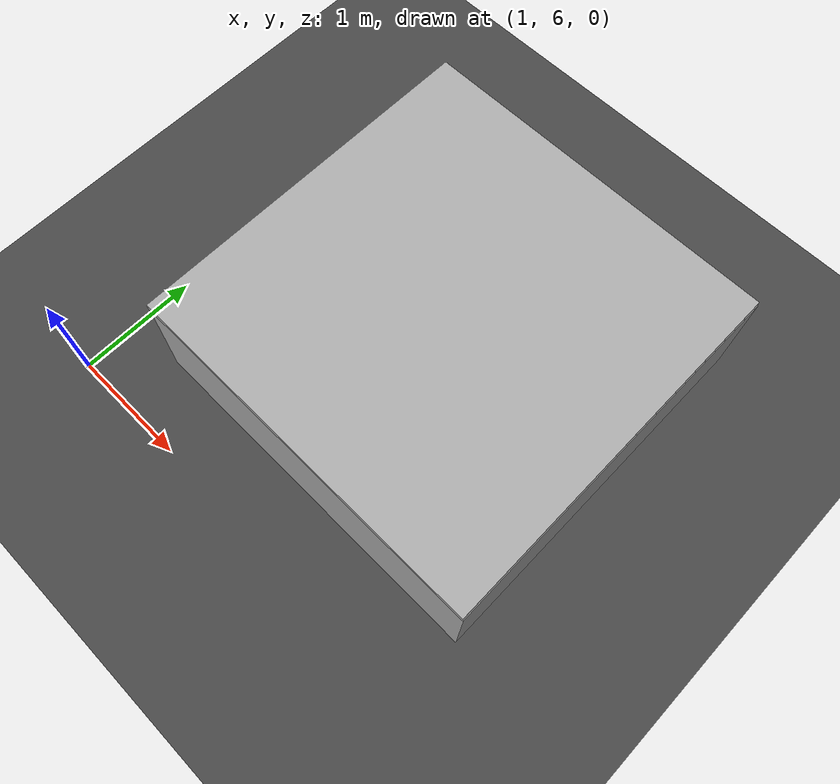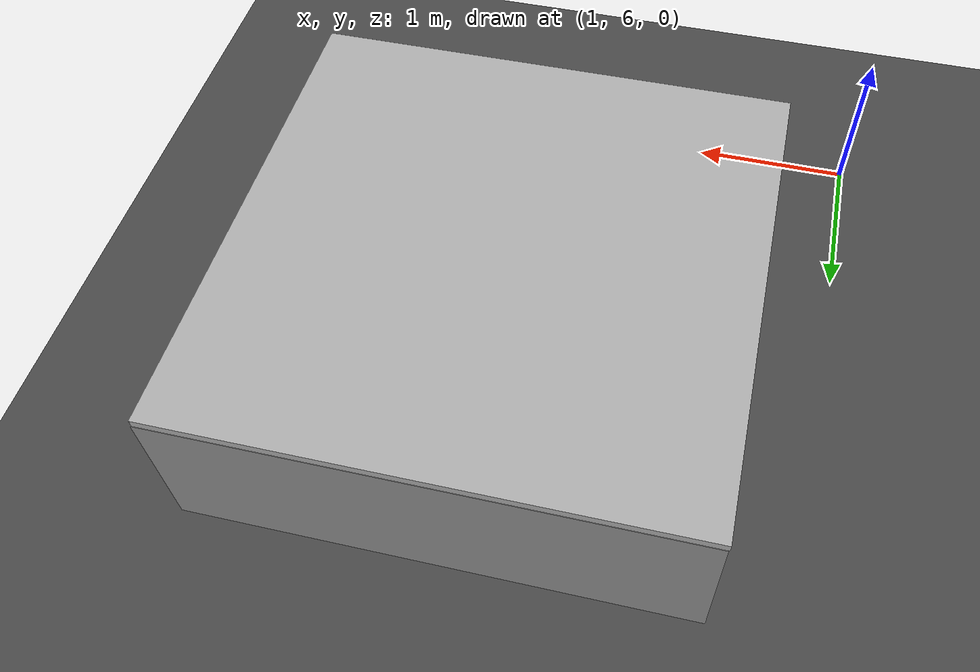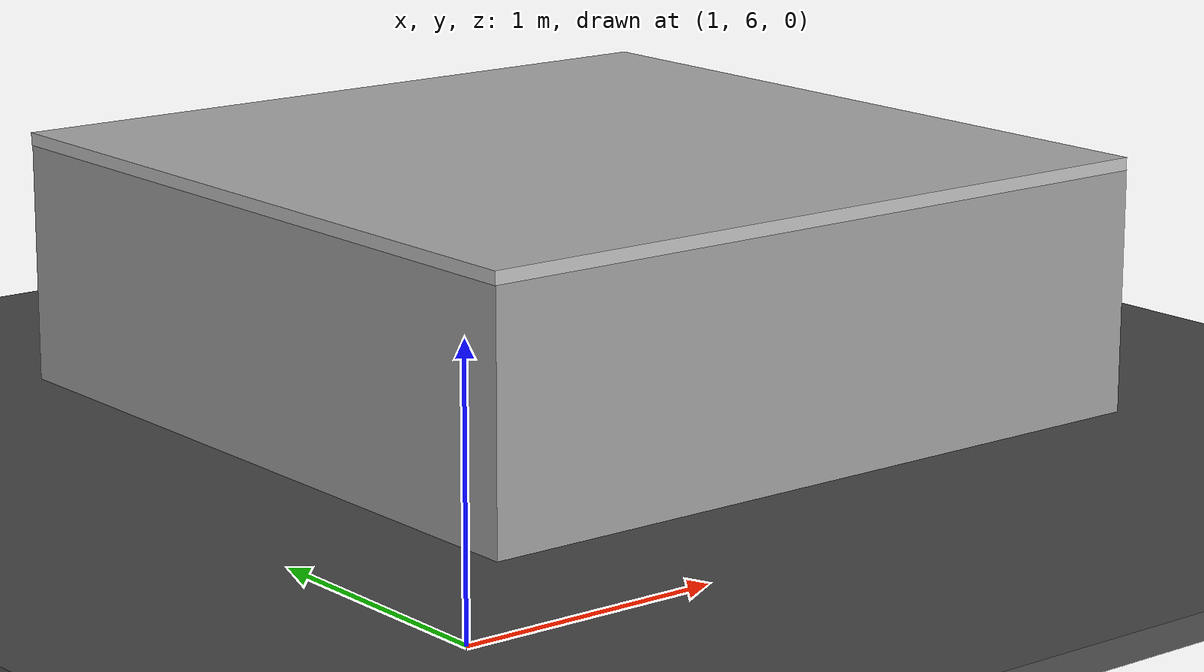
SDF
<sdf version="1.6">
 <world name="default">
  <light name="sun" type="directional">
   <pose>0 0 10 0 -0 0</pose>
   <diffuse>0.8 0.8 0.8 1</diffuse>
   <specular>0.2 0.2 0.2 1</specular>
   <attenuation>
    <range>1000</range>
    <constant>0.9</constant>
    <linear>0.01</linear>
    <quadratic>0.001</quadratic>
   </attenuation>
   <direction>-0.5 0.1 -0.9</direction>
  </light>
  <gravity>0 0 -9.8</gravity>
  <magnetic_field>6e-06 2.3e-05 -4.2e-05</magnetic_field>
  <atmosphere type="adiabatic"/>
  <physics name="default_physics" default="0" type="ode">
   <max_step_size>0.001</max_step_size>
   <real_time_factor>1</real_time_factor>
   <real_time_update_rate>1000</real_time_update_rate>
  </physics>
  <scene><ambient>0.4 0.4 0.4 1</ambient><background>0.7 0.7 0.7 1</background><shadows>1</shadows></scene>
  <audio><device>default</device></audio>
  <plugin name="ros_interface_plugin" filename="librotors_gazebo_ros_interface_plugin.so"/>
  <spherical_coordinates>
   <surface_model>EARTH_WGS84</surface_model>
   <latitude_deg>0</latitude_deg>
   <longitude_deg>0</longitude_deg>
   <elevation>0</elevation>
   <heading_deg>0</heading_deg>
  </spherical_coordinates>
  <model name="asphalt_plane">
   <link name="link">
    <inertial>
     <mass>1</mass>
     <inertia><ixx>1</ixx><ixy>0</ixy><ixz>0</ixz><iyy>1</iyy><iyz>0</iyz><izz>1</izz></inertia>
    </inertial>
    <visual name="visual">
     <cast_shadows>0</cast_shadows>
     <geometry><box><size>100 100 0.1</size></box></geometry>
     <material>
      <script>
       <uri>model://asphalt_plane/materials/scripts</uri>
       <uri>model://asphalt_plane/materials/textures</uri>
       <name>vrc/asphalt</name>
      </script>
      <shader type="vertex"><normal_map>__default__</normal_map></shader>
      <ambient>0.5 0.5 0.5 1</ambient>
      <diffuse>0.5 0.5 0.5 1</diffuse>
      <specular>0.2 0.2 0.2 1</specular>
      <emissive>0 0 0 1</emissive>
     </material>
    </visual>
    <collision name="collision">
     <geometry><box><size>20 20 0.1</size></box></geometry>
     <surface>
      <friction>
       <ode><mu>1</mu><mu2>1</mu2><fdir1>0 0 0</fdir1><slip1>0</slip1><slip2>0</slip2></ode>
       <torsional>
        <coefficient>1</coefficient>
        <patch_radius>0</patch_radius>
        <surface_radius>0</surface_radius>
        <use_patch_radius>1</use_patch_radius>
        <ode><slip>0</slip></ode>
       </torsional>
      </friction>
      <bounce><restitution_coefficient>0</restitution_coefficient><threshold>1e+06</threshold></bounce>
      <contact>
       <collide_without_contact>0</collide_without_contact>
       <collide_without_contact_bitmask>1</collide_without_contact_bitmask>
       <collide_bitmask>1</collide_bitmask>
       <ode>
        <soft_cfm>0</soft_cfm>
        <soft_erp>0.2</soft_erp>
        <kp>1e+13</kp>
        <kd>1</kd>
        <max_vel>0.01</max_vel>
        <min_depth>0</min_depth>
       </ode>
       <bullet>
        <split_impulse>1</split_impulse>
        <split_impulse_penetration_threshold>-0.01</split_impulse_penetration_threshold>
        <soft_cfm>0</soft_cfm>
        <soft_erp>0.2</soft_erp>
        <kp>1e+13</kp>
        <kd>1</kd>
       </bullet>
      </contact>
     </surface>
    </collision>
   </link>
   <static>1</static>
  </model>
  <model name="rmurv2_marker">
   <static>1</static>
   <link name="rmurv2_marker::rmurv2_marker::rmurv2_marker::rmurv2_marker::link">
    <collision name="collision"><geometry><box><size>3 3 0.05</size></box></geometry></collision>
    <visual name="visual">
     <cast_shadows>0</cast_shadows>
     <geometry><box><size>3 3 0.05</size></box></geometry>
     <material>
      <script>
       <uri>model://rmurv2_marker/materials/scripts</uri>
       <uri>model://rmurv2_marker/materials/textures</uri>
       <name>vrc/marker</name>
      </script>
     </material>
    </visual>
    <enable_wind>1</enable_wind>
   </link>
   <pose>2.99394 7.99673 1.02404 0 -0 0</pose>
  </model>
  <model name="unit_box">
   <link name="unit_box::link">
    <inertial>
     <mass>1</mass>
     <inertia>
      <ixx>0.166667</ixx>
      <ixy>0</ixy>
      <ixz>0</ixz>
      <iyy>0.166667</iyy>
      <iyz>0</iyz>
      <izz>0.166667</izz>
     </inertia>
    </inertial>
    <visual name="visual">
     <geometry><box><size>3 3 1</size></box></geometry>
     <material>
      <script><name>Gazebo/Grey</name><uri>file://media/materials/scripts/gazebo.material</uri></script>
      <shader type="vertex"><normal_map>__default__</normal_map></shader>
      <ambient>0.3 0.3 0.3 1</ambient>
      <diffuse>0.7 0.7 0.7 1</diffuse>
      <specular>0.01 0.01 0.01 1</specular>
      <emissive>0 0 0 1</emissive>
     </material>
    </visual>
    <collision name="collision">
     <geometry><box><size>1 1 1</size></box></geometry>
     <surface>
      <friction>
       <ode><mu>1</mu><mu2>1</mu2><fdir1>0 0 0</fdir1><slip1>0</slip1><slip2>0</slip2></ode>
       <torsional>
        <coefficient>1</coefficient>
        <patch_radius>0</patch_radius>
        <surface_radius>0</surface_radius>
        <use_patch_radius>1</use_patch_radius>
        <ode><slip>0</slip></ode>
       </torsional>
      </friction>
      <bounce><restitution_coefficient>0</restitution_coefficient><threshold>1e+06</threshold></bounce>
      <contact>
       <collide_without_contact>0</collide_without_contact>
       <collide_without_contact_bitmask>1</collide_without_contact_bitmask>
       <collide_bitmask>1</collide_bitmask>
       <ode>
        <soft_cfm>0</soft_cfm>
        <soft_erp>0.2</soft_erp>
        <kp>1e+13</kp>
        <kd>1</kd>
        <max_vel>0.01</max_vel>
        <min_depth>0</min_depth>
       </ode>
       <bullet>
        <split_impulse>1</split_impulse>
        <split_impulse_penetration_threshold>-0.01</split_impulse_penetration_threshold>
        <soft_cfm>0</soft_cfm>
        <soft_erp>0.2</soft_erp>
        <kp>1e+13</kp>
        <kd>1</kd>
       </bullet>
      </contact>
     </surface>
    </collision>
   </link>
   <static>0</static>
   <pose>3 8 0.5 0 -0 0</pose>
  </model>
 </world>
</sdf>
